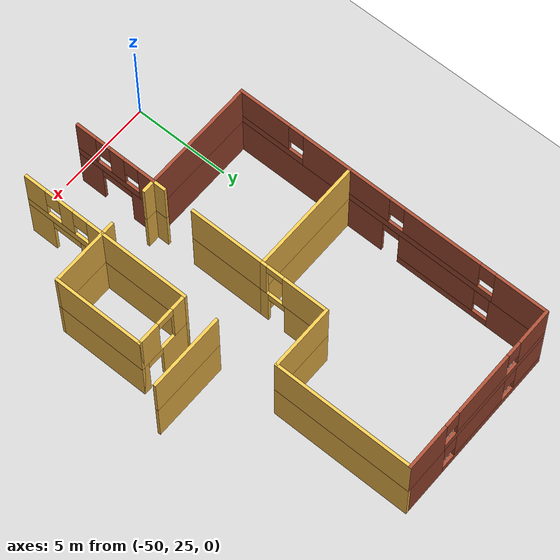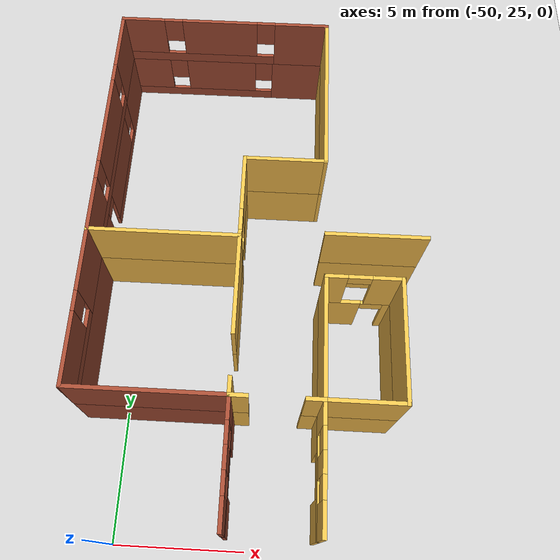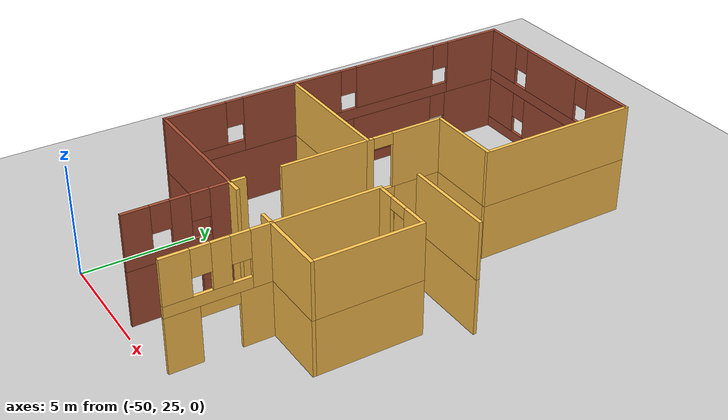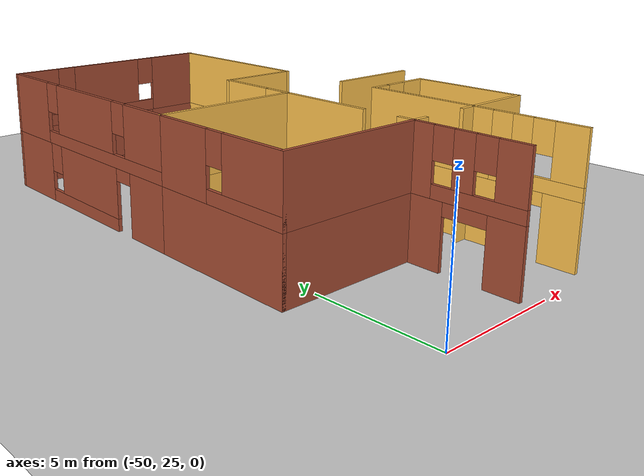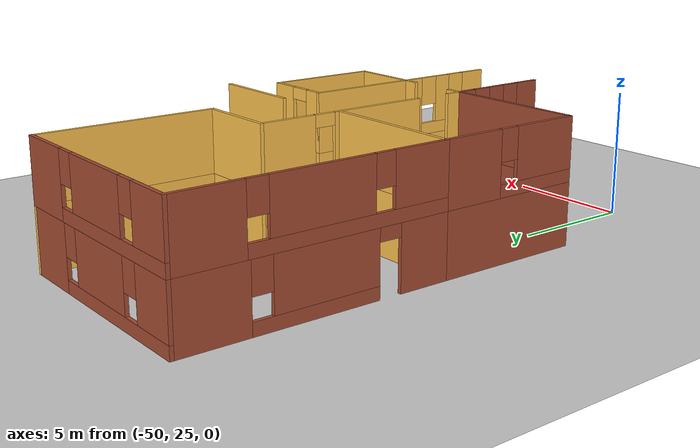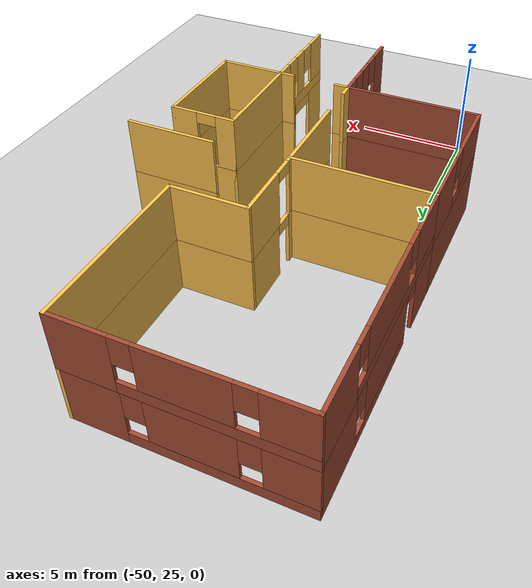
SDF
<sdf version="1.7">
 <world name="default">
  <model name="ground_plane">
   <static>1</static>
   <link name="link">
    <collision name="collision">
     <geometry><plane><normal>0 0 1</normal><size>100 100</size></plane></geometry>
     <surface>
      <contact><collide_bitmask>65535</collide_bitmask></contact>
      <friction><ode><mu>100</mu><mu2>50</mu2></ode></friction>
     </surface>
    </collision>
    <visual name="visual">
     <cast_shadows>0</cast_shadows>
     <geometry><plane><normal>0 0 1</normal><size>100 100</size></plane></geometry>
     <material>
      <script><uri>file://media/materials/scripts/gazebo.material</uri><name>Gazebo/Grey</name></script>
     </material>
    </visual>
   </link>
  </model>
  <model name="DepartmentBuilding">
   <pose>-25.6559 18.8293 0 0 -0 0</pose>
   <link name="Wall_271">
    <collision name="Wall_271_Collision">
     <geometry><box><size>7.25 0.15 2.5</size></box></geometry>
     <pose>0 0 1.25 0 -0 0</pose>
    </collision>
    <visual name="Wall_271_Visual">
     <pose>0 0 1.25 0 -0 0</pose>
     <geometry><box><size>7.25 0.15 2.5</size></box></geometry>
     <material>
      <script><uri>file://media/materials/scripts/gazebo.material</uri><name>Gazebo/Grey</name></script>
      <ambient>1 0.764706 0.305882 1</ambient>
     </material>
     <meta><layer>0</layer></meta>
    </visual>
    <pose>-16.8305 24.1392 0 0 -0 -1.57079</pose>
   </link>
   <link name="Wall_274">
    <pose>-21.3806 27.6891 0 0 -0 3.14159</pose>
    <visual name="Wall_274_Visual_0">
     <pose>-3.40443 0 1.25 0 -0 0</pose>
     <geometry><box><size>2.44114 0.15 2.5</size></box></geometry>
     <material>
      <script><uri>file://media/materials/scripts/gazebo.material</uri><name>Gazebo/Bricks</name></script>
      <ambient>1 1 1 1</ambient>
     </material>
     <meta><layer>0</layer></meta>
    </visual>
    <collision name="Wall_274_Collision_0">
     <geometry><box><size>2.44114 0.15 2.5</size></box></geometry>
     <pose>-3.40443 0 1.25 0 -0 0</pose>
    </collision>
    <visual name="Wall_274_Visual_1">
     <pose>1.22057 0 0.25 0 -0 0</pose>
     <geometry><box><size>6.80886 0.15 0.5</size></box></geometry>
     <material>
      <script><uri>file://media/materials/scripts/gazebo.material</uri><name>Gazebo/Bricks</name></script>
      <ambient>1 1 1 1</ambient>
     </material>
     <meta><layer>0</layer></meta>
    </visual>
    <collision name="Wall_274_Collision_1">
     <geometry><box><size>6.80886 0.15 0.5</size></box></geometry>
     <pose>1.22057 0 0.25 0 -0 0</pose>
    </collision>
    <visual name="Wall_274_Visual_2">
     <pose>0.2632 0 1.5 0 -0 0</pose>
     <geometry><box><size>3.29412 0.15 2</size></box></geometry>
     <material>
      <script><uri>file://media/materials/scripts/gazebo.material</uri><name>Gazebo/Bricks</name></script>
      <ambient>1 1 1 1</ambient>
     </material>
     <meta><layer>0</layer></meta>
    </visual>
    <collision name="Wall_274_Collision_2">
     <geometry><box><size>3.29412 0.15 2</size></box></geometry>
     <pose>0.2632 0 1.5 0 -0 0</pose>
    </collision>
    <visual name="Wall_274_Visual_3">
     <pose>3.66763 0 1.5 0 -0 0</pose>
     <geometry><box><size>1.91474 0.15 2</size></box></geometry>
     <material>
      <script><uri>file://media/materials/scripts/gazebo.material</uri><name>Gazebo/Bricks</name></script>
      <ambient>1 1 1 1</ambient>
     </material>
     <meta><layer>0</layer></meta>
    </visual>
    <collision name="Wall_274_Collision_3">
     <geometry><box><size>1.91474 0.15 2</size></box></geometry>
     <pose>3.66763 0 1.5 0 -0 0</pose>
    </collision>
    <visual name="Wall_274_Visual_4">
     <pose>-1.78386 0 1.9 0 -0 0</pose>
     <geometry><box><size>0.8 0.15 1.2</size></box></geometry>
     <material>
      <script><uri>file://media/materials/scripts/gazebo.material</uri><name>Gazebo/Bricks</name></script>
      <ambient>1 1 1 1</ambient>
     </material>
     <meta><layer>0</layer></meta>
    </visual>
    <collision name="Wall_274_Collision_4">
     <geometry><box><size>0.8 0.15 1.2</size></box></geometry>
     <pose>-1.78386 0 1.9 0 -0 0</pose>
    </collision>
    <visual name="Wall_274_Visual_5">
     <pose>2.31026 0 1.9 0 -0 0</pose>
     <geometry><box><size>0.8 0.15 1.2</size></box></geometry>
     <material>
      <script><uri>file://media/materials/scripts/gazebo.material</uri><name>Gazebo/Bricks</name></script>
      <ambient>1 1 1 1</ambient>
     </material>
     <meta><layer>0</layer></meta>
    </visual>
    <collision name="Wall_274_Collision_5">
     <geometry><box><size>0.8 0.15 1.2</size></box></geometry>
     <pose>2.31026 0 1.9 0 -0 0</pose>
    </collision>
   </link>
   <link name="Wall_275">
    <pose>-25.9306 22.3891 0 0 -0 -1.5708</pose>
    <visual name="Wall_275_Visual_0">
     <pose>-3.95491 0 1.25 0 -0 0</pose>
     <geometry><box><size>2.84017 0.15 2.5</size></box></geometry>
     <material>
      <script><uri>file://media/materials/scripts/gazebo.material</uri><name>Gazebo/Bricks</name></script>
      <ambient>1 1 1 1</ambient>
     </material>
     <meta><layer>0</layer></meta>
    </visual>
    <collision name="Wall_275_Collision_0">
     <geometry><box><size>2.84017 0.15 2.5</size></box></geometry>
     <pose>-3.95491 0 1.25 0 -0 0</pose>
    </collision>
    <visual name="Wall_275_Visual_1">
     <pose>4.34836 0 1.25 0 -0 0</pose>
     <geometry><box><size>2.05328 0.15 2.5</size></box></geometry>
     <material>
      <script><uri>file://media/materials/scripts/gazebo.material</uri><name>Gazebo/Bricks</name></script>
      <ambient>1 1 1 1</ambient>
     </material>
     <meta><layer>0</layer></meta>
    </visual>
    <collision name="Wall_275_Collision_1">
     <geometry><box><size>2.05328 0.15 2.5</size></box></geometry>
     <pose>4.34836 0 1.25 0 -0 0</pose>
    </collision>
    <visual name="Wall_275_Visual_2">
     <pose>-0.056553 0 0.25 0 -0 0</pose>
     <geometry><box><size>4.95655 0.15 0.5</size></box></geometry>
     <material>
      <script><uri>file://media/materials/scripts/gazebo.material</uri><name>Gazebo/Bricks</name></script>
      <ambient>1 1 1 1</ambient>
     </material>
     <meta><layer>0</layer></meta>
    </visual>
    <collision name="Wall_275_Collision_2">
     <geometry><box><size>4.95655 0.15 0.5</size></box></geometry>
     <pose>-0.056553 0 0.25 0 -0 0</pose>
    </collision>
    <visual name="Wall_275_Visual_3">
     <pose>0.343447 0 1.5 0 -0 0</pose>
     <geometry><box><size>4.15655 0.15 2</size></box></geometry>
     <material>
      <script><uri>file://media/materials/scripts/gazebo.material</uri><name>Gazebo/Bricks</name></script>
      <ambient>1 1 1 1</ambient>
     </material>
     <meta><layer>0</layer></meta>
    </visual>
    <collision name="Wall_275_Collision_3">
     <geometry><box><size>4.15655 0.15 2</size></box></geometry>
     <pose>0.343447 0 1.5 0 -0 0</pose>
    </collision>
    <visual name="Wall_275_Visual_4">
     <pose>-2.13483 0 1.9 0 -0 0</pose>
     <geometry><box><size>0.8 0.15 1.2</size></box></geometry>
     <material>
      <script><uri>file://media/materials/scripts/gazebo.material</uri><name>Gazebo/Bricks</name></script>
      <ambient>1 1 1 1</ambient>
     </material>
     <meta><layer>0</layer></meta>
    </visual>
    <collision name="Wall_275_Collision_4">
     <geometry><box><size>0.8 0.15 1.2</size></box></geometry>
     <pose>-2.13483 0 1.9 0 -0 0</pose>
    </collision>
    <visual name="Wall_275_Visual_5">
     <pose>2.87172 0 2.25 0 -0 0</pose>
     <geometry><box><size>0.9 0.15 0.5</size></box></geometry>
     <material>
      <script><uri>file://media/materials/scripts/gazebo.material</uri><name>Gazebo/Bricks</name></script>
      <ambient>1 1 1 1</ambient>
     </material>
     <meta><layer>0</layer></meta>
    </visual>
    <collision name="Wall_275_Collision_5">
     <geometry><box><size>0.9 0.15 0.5</size></box></geometry>
     <pose>2.87172 0 2.25 0 -0 0</pose>
    </collision>
   </link>
   <link name="Wall_276">
    <collision name="Wall_276_Collision">
     <geometry><box><size>6 0.15 2.5</size></box></geometry>
     <pose>0 0 1.25 0 -0 0</pose>
    </collision>
    <visual name="Wall_276_Visual">
     <pose>0 0 1.25 0 -0 0</pose>
     <geometry><box><size>6 0.15 2.5</size></box></geometry>
     <material>
      <script><uri>file://media/materials/scripts/gazebo.material</uri><name>Gazebo/Grey</name></script>
      <ambient>1 0.764706 0.305882 1</ambient>
     </material>
     <meta><layer>0</layer></meta>
    </visual>
    <pose>-23.0056 17.0891 0 0 -0 0</pose>
   </link>
   <link name="Wall_277">
    <pose>-20.0805 18.8392 0 0 -0 1.57077</pose>
    <visual name="Wall_277_Visual_0">
     <pose>-1.60655 0 1.25 0 -0 0</pose>
     <geometry><box><size>0.437216 0.15 2.5</size></box></geometry>
     <material>
      <script><uri>file://media/materials/scripts/gazebo.material</uri><name>Gazebo/Grey</name></script>
      <ambient>1 0.764706 0.305882 1</ambient>
     </material>
     <meta><layer>0</layer></meta>
    </visual>
    <collision name="Wall_277_Collision_0">
     <geometry><box><size>0.437216 0.15 2.5</size></box></geometry>
     <pose>-1.60655 0 1.25 0 -0 0</pose>
    </collision>
    <visual name="Wall_277_Visual_1">
     <pose>0.668608 0 1.25 0 -0 0</pose>
     <geometry><box><size>2.3131 0.15 2.5</size></box></geometry>
     <material>
      <script><uri>file://media/materials/scripts/gazebo.material</uri><name>Gazebo/Grey</name></script>
      <ambient>1 0.764706 0.305882 1</ambient>
     </material>
     <meta><layer>0</layer></meta>
    </visual>
    <collision name="Wall_277_Collision_1">
     <geometry><box><size>2.3131 0.15 2.5</size></box></geometry>
     <pose>0.668608 0 1.25 0 -0 0</pose>
    </collision>
    <visual name="Wall_277_Visual_2">
     <pose>-0.937941 0 2.25 0 -0 0</pose>
     <geometry><box><size>0.9 0.15 0.5</size></box></geometry>
     <material>
      <script><uri>file://media/materials/scripts/gazebo.material</uri><name>Gazebo/Grey</name></script>
      <ambient>1 0.764706 0.305882 1</ambient>
     </material>
     <meta><layer>0</layer></meta>
    </visual>
    <collision name="Wall_277_Collision_2">
     <geometry><box><size>0.9 0.15 0.5</size></box></geometry>
     <pose>-0.937941 0 2.25 0 -0 0</pose>
    </collision>
   </link>
   <link name="Wall_278">
    <collision name="Wall_278_Collision">
     <geometry><box><size>3.4 0.15 2.5</size></box></geometry>
     <pose>0 0 1.25 0 -0 0</pose>
    </collision>
    <visual name="Wall_278_Visual">
     <pose>0 0 1.25 0 -0 0</pose>
     <geometry><box><size>3.4 0.15 2.5</size></box></geometry>
     <material>
      <script><uri>file://media/materials/scripts/gazebo.material</uri><name>Gazebo/Grey</name></script>
      <ambient>1 0.764706 0.305882 1</ambient>
     </material>
     <meta><layer>0</layer></meta>
    </visual>
    <pose>-18.4555 20.5894 0 0 -0 0</pose>
   </link>
   <link name="Wall_280">
    <collision name="Wall_280_Collision">
     <geometry><box><size>4 0.15 2.5</size></box></geometry>
     <pose>0 0 1.25 0 -0 0</pose>
    </collision>
    <visual name="Wall_280_Visual">
     <pose>0 0 1.25 0 -0 0</pose>
     <geometry><box><size>4 0.15 2.5</size></box></geometry>
     <material>
      <script><uri>file://media/materials/scripts/gazebo.material</uri><name>Gazebo/Grey</name></script>
      <ambient>1 0.764706 0.305882 1</ambient>
     </material>
     <meta><layer>0</layer></meta>
    </visual>
    <pose>-20.0806 15.1641 0 0 -0 -1.5708</pose>
   </link>
   <link name="Wall_282">
    <collision name="Wall_282_Collision">
     <geometry><box><size>6.25 0.15 2.5</size></box></geometry>
     <pose>0 0 1.25 0 -0 0</pose>
    </collision>
    <visual name="Wall_282_Visual">
     <pose>0 0 1.25 0 -0 0</pose>
     <geometry><box><size>6.25 0.15 2.5</size></box></geometry>
     <material>
      <script><uri>file://media/materials/scripts/gazebo.material</uri><name>Gazebo/Bricks</name></script>
      <ambient>1 1 1 1</ambient>
     </material>
     <meta><layer>0</layer></meta>
    </visual>
    <pose>-25.9306 14.0391 0 0 -0 -1.5708</pose>
   </link>
   <link name="Wall_283">
    <collision name="Wall_283_Collision">
     <geometry><box><size>6 0.15 2.5</size></box></geometry>
     <pose>0 0 1.25 0 -0 0</pose>
    </collision>
    <visual name="Wall_283_Visual">
     <pose>0 0 1.25 0 -0 0</pose>
     <geometry><box><size>6 0.15 2.5</size></box></geometry>
     <material>
      <script><uri>file://media/materials/scripts/gazebo.material</uri><name>Gazebo/Bricks</name></script>
      <ambient>1 1 1 1</ambient>
     </material>
     <meta><layer>0</layer></meta>
    </visual>
    <pose>-23.0056 10.9891 0 0 -0 0</pose>
   </link>
   <link name="Wall_284">
    <collision name="Wall_284_Collision">
     <geometry><box><size>0.75 0.15 2.5</size></box></geometry>
     <pose>0 0 1.25 0 -0 0</pose>
    </collision>
    <visual name="Wall_284_Visual">
     <pose>0 0 1.25 0 -0 0</pose>
     <geometry><box><size>0.75 0.15 2.5</size></box></geometry>
     <material>
      <script><uri>file://media/materials/scripts/gazebo.material</uri><name>Gazebo/Grey</name></script>
      <ambient>1 0.764706 0.305882 1</ambient>
     </material>
     <meta><layer>0</layer></meta>
    </visual>
    <pose>-20.0806 11.2891 0 0 -0 1.5708</pose>
   </link>
   <link name="Wall_286">
    <collision name="Wall_286_Collision">
     <geometry><box><size>0.75 0.15 2.5</size></box></geometry>
     <pose>0 0 1.25 0 -0 0</pose>
    </collision>
    <visual name="Wall_286_Visual">
     <pose>0 0 1.25 0 -0 0</pose>
     <geometry><box><size>0.75 0.15 2.5</size></box></geometry>
     <material>
      <script><uri>file://media/materials/scripts/gazebo.material</uri><name>Gazebo/Grey</name></script>
      <ambient>1 0.764706 0.305882 1</ambient>
     </material>
     <meta><layer>0</layer></meta>
    </visual>
    <pose>-19.7806 10.9891 0 0 -0 0</pose>
   </link>
   <link name="Wall_288">
    <collision name="Wall_288_Collision">
     <geometry><box><size>0.75 0.15 2.5</size></box></geometry>
     <pose>0 0 1.25 0 -0 0</pose>
    </collision>
    <visual name="Wall_288_Visual">
     <pose>0 0 1.25 0 -0 0</pose>
     <geometry><box><size>0.75 0.15 2.5</size></box></geometry>
     <material>
      <script><uri>file://media/materials/scripts/gazebo.material</uri><name>Gazebo/Grey</name></script>
      <ambient>1 0.764706 0.305882 1</ambient>
     </material>
     <meta><layer>0</layer></meta>
    </visual>
    <pose>-17.0806 10.9891 0 0 -0 0</pose>
   </link>
   <link name="Wall_289">
    <collision name="Wall_289_Collision">
     <geometry><box><size>4.75 0.15 2.5</size></box></geometry>
     <pose>0 0 1.25 0 -0 0</pose>
    </collision>
    <visual name="Wall_289_Visual">
     <pose>0 0 1.25 0 -0 0</pose>
     <geometry><box><size>4.75 0.15 2.5</size></box></geometry>
     <material>
      <script><uri>file://media/materials/scripts/gazebo.material</uri><name>Gazebo/Grey</name></script>
      <ambient>1 0.764706 0.305882 1</ambient>
     </material>
     <meta><layer>0</layer></meta>
    </visual>
    <pose>-16.7806 13.2891 0 0 -0 1.5708</pose>
   </link>
   <link name="Wall_290">
    <pose>-15.3556 15.5891 0 0 -0 0</pose>
    <visual name="Wall_290_Visual_0">
     <pose>-0.661214 0 1.25 0 -0 0</pose>
     <geometry><box><size>1.67757 0.15 2.5</size></box></geometry>
     <material>
      <script><uri>file://media/materials/scripts/gazebo.material</uri><name>Gazebo/Grey</name></script>
      <ambient>1 0.764706 0.305882 1</ambient>
     </material>
     <meta><layer>0</layer></meta>
    </visual>
    <collision name="Wall_290_Collision_0">
     <geometry><box><size>1.67757 0.15 2.5</size></box></geometry>
     <pose>-0.661214 0 1.25 0 -0 0</pose>
    </collision>
    <visual name="Wall_290_Visual_1">
     <pose>1.28879 0 1.25 0 -0 0</pose>
     <geometry><box><size>0.422429 0.15 2.5</size></box></geometry>
     <material>
      <script><uri>file://media/materials/scripts/gazebo.material</uri><name>Gazebo/Grey</name></script>
      <ambient>1 0.764706 0.305882 1</ambient>
     </material>
     <meta><layer>0</layer></meta>
    </visual>
    <collision name="Wall_290_Collision_1">
     <geometry><box><size>0.422429 0.15 2.5</size></box></geometry>
     <pose>1.28879 0 1.25 0 -0 0</pose>
    </collision>
    <visual name="Wall_290_Visual_2">
     <pose>0.627571 0 2.25 0 -0 0</pose>
     <geometry><box><size>0.9 0.15 0.5</size></box></geometry>
     <material>
      <script><uri>file://media/materials/scripts/gazebo.material</uri><name>Gazebo/Grey</name></script>
      <ambient>1 0.764706 0.305882 1</ambient>
     </material>
     <meta><layer>0</layer></meta>
    </visual>
    <collision name="Wall_290_Collision_2">
     <geometry><box><size>0.9 0.15 0.5</size></box></geometry>
     <pose>0.627571 0 2.25 0 -0 0</pose>
    </collision>
   </link>
   <link name="Wall_291">
    <collision name="Wall_291_Collision">
     <geometry><box><size>4.75 0.15 2.5</size></box></geometry>
     <pose>0 0 1.25 0 -0 0</pose>
    </collision>
    <visual name="Wall_291_Visual">
     <pose>0 0 1.25 0 -0 0</pose>
     <geometry><box><size>4.75 0.15 2.5</size></box></geometry>
     <material>
      <script><uri>file://media/materials/scripts/gazebo.material</uri><name>Gazebo/Grey</name></script>
      <ambient>1 0.764706 0.305882 1</ambient>
     </material>
     <meta><layer>0</layer></meta>
    </visual>
    <pose>-13.9306 13.2891 0 0 -0 -1.5708</pose>
   </link>
   <link name="Wall_292">
    <collision name="Wall_292_Collision">
     <geometry><box><size>3 0.15 2.5</size></box></geometry>
     <pose>0 0 1.25 0 -0 0</pose>
    </collision>
    <visual name="Wall_292_Visual">
     <pose>0 0 1.25 0 -0 0</pose>
     <geometry><box><size>3 0.15 2.5</size></box></geometry>
     <material>
      <script><uri>file://media/materials/scripts/gazebo.material</uri><name>Gazebo/Grey</name></script>
      <ambient>1 0.764706 0.305882 1</ambient>
     </material>
     <meta><layer>0</layer></meta>
    </visual>
    <pose>-15.3556 10.9891 0 0 -0 3.14159</pose>
   </link>
   <link name="Wall_297">
    <collision name="Wall_297_Collision">
     <geometry><box><size>4 0.15 2.5</size></box></geometry>
     <pose>0 0 1.25 0 -0 0</pose>
    </collision>
    <visual name="Wall_297_Visual">
     <pose>0 0 1.25 0 -0 0</pose>
     <geometry><box><size>4 0.15 2.5</size></box></geometry>
     <material>
      <script><uri>file://media/materials/scripts/gazebo.material</uri><name>Gazebo/Grey</name></script>
      <ambient>1 0.764706 0.305882 1</ambient>
     </material>
     <meta><layer>0</layer></meta>
    </visual>
    <pose>-14.8556 17.3391 0 0 -0 3.14159</pose>
   </link>
   <link name="Wall_326">
    <pose>-20.0806 8.81406 0 0 -0 -1.5708</pose>
    <visual name="Wall_326_Visual_0">
     <pose>-1.53002 0 1.25 0 -0 0</pose>
     <geometry><box><size>1.43996 0.15 2.5</size></box></geometry>
     <material>
      <script><uri>file://media/materials/scripts/gazebo.material</uri><name>Gazebo/Bricks</name></script>
      <ambient>1 1 1 1</ambient>
     </material>
     <meta><layer>0</layer></meta>
    </visual>
    <collision name="Wall_326_Collision_0">
     <geometry><box><size>1.43996 0.15 2.5</size></box></geometry>
     <pose>-1.53002 0 1.25 0 -0 0</pose>
    </collision>
    <visual name="Wall_326_Visual_1">
     <pose>1.56998 0 1.25 0 -0 0</pose>
     <geometry><box><size>1.36004 0.15 2.5</size></box></geometry>
     <material>
      <script><uri>file://media/materials/scripts/gazebo.material</uri><name>Gazebo/Bricks</name></script>
      <ambient>1 1 1 1</ambient>
     </material>
     <meta><layer>0</layer></meta>
    </visual>
    <collision name="Wall_326_Collision_1">
     <geometry><box><size>1.36004 0.15 2.5</size></box></geometry>
     <pose>1.56998 0 1.25 0 -0 0</pose>
    </collision>
    <visual name="Wall_326_Visual_2">
     <pose>0.039956 0 2.25 0 -0 0</pose>
     <geometry><box><size>1.7 0.15 0.5</size></box></geometry>
     <material>
      <script><uri>file://media/materials/scripts/gazebo.material</uri><name>Gazebo/Bricks</name></script>
      <ambient>1 1 1 1</ambient>
     </material>
     <meta><layer>0</layer></meta>
    </visual>
    <collision name="Wall_326_Collision_2">
     <geometry><box><size>1.7 0.15 0.5</size></box></geometry>
     <pose>0.039956 0 2.25 0 -0 0</pose>
    </collision>
   </link>
   <link name="Wall_336">
    <pose>-16.7806 8.81406 0 0 -0 -1.5708</pose>
    <visual name="Wall_336_Visual_0">
     <pose>-1.51511 0 1.25 0 -0 0</pose>
     <geometry><box><size>1.46977 0.15 2.5</size></box></geometry>
     <material>
      <script><uri>file://media/materials/scripts/gazebo.material</uri><name>Gazebo/Grey</name></script>
      <ambient>1 0.764706 0.305882 1</ambient>
     </material>
     <meta><layer>0</layer></meta>
    </visual>
    <collision name="Wall_336_Collision_0">
     <geometry><box><size>1.46977 0.15 2.5</size></box></geometry>
     <pose>-1.51511 0 1.25 0 -0 0</pose>
    </collision>
    <visual name="Wall_336_Visual_1">
     <pose>1.53489 0 1.25 0 -0 0</pose>
     <geometry><box><size>1.43023 0.15 2.5</size></box></geometry>
     <material>
      <script><uri>file://media/materials/scripts/gazebo.material</uri><name>Gazebo/Grey</name></script>
      <ambient>1 0.764706 0.305882 1</ambient>
     </material>
     <meta><layer>0</layer></meta>
    </visual>
    <collision name="Wall_336_Collision_1">
     <geometry><box><size>1.43023 0.15 2.5</size></box></geometry>
     <pose>1.53489 0 1.25 0 -0 0</pose>
    </collision>
    <visual name="Wall_336_Visual_2">
     <pose>0.019773 0 2.25 0 -0 0</pose>
     <geometry><box><size>1.6 0.15 0.5</size></box></geometry>
     <material>
      <script><uri>file://media/materials/scripts/gazebo.material</uri><name>Gazebo/Grey</name></script>
      <ambient>1 0.764706 0.305882 1</ambient>
     </material>
     <meta><layer>0</layer></meta>
    </visual>
    <collision name="Wall_336_Collision_2">
     <geometry><box><size>1.6 0.15 0.5</size></box></geometry>
     <pose>0.019773 0 2.25 0 -0 0</pose>
    </collision>
   </link>
   <link name="Wall_937">
    <collision name="Wall_937_Collision">
     <geometry><box><size>7.24969 0.15 2.5</size></box></geometry>
     <pose>0 0 1.25 0 -0 0</pose>
    </collision>
    <visual name="Wall_937_Visual">
     <pose>0 0 1.25 0 -0 0</pose>
     <geometry><box><size>7.24969 0.15 2.5</size></box></geometry>
     <material>
      <script><uri>file://media/materials/scripts/gazebo.material</uri><name>Gazebo/Grey</name></script>
      <ambient>1 0.764706 0.305882 1</ambient>
     </material>
     <meta><layer>1</layer></meta>
    </visual>
    <pose>-16.8305 24.1392 2.5 0 -0 -1.57079</pose>
   </link>
   <link name="Wall_939">
    <pose>-21.3806 27.6891 2.5 0 -0 3.14159</pose>
    <visual name="Wall_939_Visual_0">
     <pose>-3.43227 0 1.25 0 -0 0</pose>
     <geometry><box><size>2.38547 0.15 2.5</size></box></geometry>
     <material>
      <script><uri>file://media/materials/scripts/gazebo.material</uri><name>Gazebo/Bricks</name></script>
      <ambient>1 1 1 1</ambient>
     </material>
     <meta><layer>1</layer></meta>
    </visual>
    <collision name="Wall_939_Collision_0">
     <geometry><box><size>2.38547 0.15 2.5</size></box></geometry>
     <pose>-3.43227 0 1.25 0 -0 0</pose>
    </collision>
    <visual name="Wall_939_Visual_1">
     <pose>1.19274 0 0.25 0 -0 0</pose>
     <geometry><box><size>6.86453 0.15 0.5</size></box></geometry>
     <material>
      <script><uri>file://media/materials/scripts/gazebo.material</uri><name>Gazebo/Bricks</name></script>
      <ambient>1 1 1 1</ambient>
     </material>
     <meta><layer>1</layer></meta>
    </visual>
    <collision name="Wall_939_Collision_1">
     <geometry><box><size>6.86453 0.15 0.5</size></box></geometry>
     <pose>1.19274 0 0.25 0 -0 0</pose>
    </collision>
    <visual name="Wall_939_Visual_2">
     <pose>0.232169 0 1.5 0 -0 0</pose>
     <geometry><box><size>3.3434 0.15 2</size></box></geometry>
     <material>
      <script><uri>file://media/materials/scripts/gazebo.material</uri><name>Gazebo/Bricks</name></script>
      <ambient>1 1 1 1</ambient>
     </material>
     <meta><layer>1</layer></meta>
    </visual>
    <collision name="Wall_939_Collision_2">
     <geometry><box><size>3.3434 0.15 2</size></box></geometry>
     <pose>0.232169 0 1.5 0 -0 0</pose>
    </collision>
    <visual name="Wall_939_Visual_3">
     <pose>3.66443 0 1.5 0 -0 0</pose>
     <geometry><box><size>1.92113 0.15 2</size></box></geometry>
     <material>
      <script><uri>file://media/materials/scripts/gazebo.material</uri><name>Gazebo/Bricks</name></script>
      <ambient>1 1 1 1</ambient>
     </material>
     <meta><layer>1</layer></meta>
    </visual>
    <collision name="Wall_939_Collision_3">
     <geometry><box><size>1.92113 0.15 2</size></box></geometry>
     <pose>3.66443 0 1.5 0 -0 0</pose>
    </collision>
    <visual name="Wall_939_Visual_4">
     <pose>-1.83953 0 1.9 0 -0 0</pose>
     <geometry><box><size>0.8 0.15 1.2</size></box></geometry>
     <material>
      <script><uri>file://media/materials/scripts/gazebo.material</uri><name>Gazebo/Bricks</name></script>
      <ambient>1 1 1 1</ambient>
     </material>
     <meta><layer>1</layer></meta>
    </visual>
    <collision name="Wall_939_Collision_4">
     <geometry><box><size>0.8 0.15 1.2</size></box></geometry>
     <pose>-1.83953 0 1.9 0 -0 0</pose>
    </collision>
    <visual name="Wall_939_Visual_5">
     <pose>2.30387 0 1.9 0 -0 0</pose>
     <geometry><box><size>0.8 0.15 1.2</size></box></geometry>
     <material>
      <script><uri>file://media/materials/scripts/gazebo.material</uri><name>Gazebo/Bricks</name></script>
      <ambient>1 1 1 1</ambient>
     </material>
     <meta><layer>1</layer></meta>
    </visual>
    <collision name="Wall_939_Collision_5">
     <geometry><box><size>0.8 0.15 1.2</size></box></geometry>
     <pose>2.30387 0 1.9 0 -0 0</pose>
    </collision>
   </link>
   <link name="Wall_940">
    <pose>-25.9306 22.3891 2.5 0 -0 -1.5708</pose>
    <visual name="Wall_940_Visual_0">
     <pose>-4.0037 0 1.25 0 -0 0</pose>
     <geometry><box><size>2.74261 0.15 2.5</size></box></geometry>
     <material>
      <script><uri>file://media/materials/scripts/gazebo.material</uri><name>Gazebo/Bricks</name></script>
      <ambient>1 1 1 1</ambient>
     </material>
     <meta><layer>1</layer></meta>
    </visual>
    <collision name="Wall_940_Collision_0">
     <geometry><box><size>2.74261 0.15 2.5</size></box></geometry>
     <pose>-4.0037 0 1.25 0 -0 0</pose>
    </collision>
    <visual name="Wall_940_Visual_1">
     <pose>1.3713 0 0.25 0 -0 0</pose>
     <geometry><box><size>8.0074 0.15 0.5</size></box></geometry>
     <material>
      <script><uri>file://media/materials/scripts/gazebo.material</uri><name>Gazebo/Bricks</name></script>
      <ambient>1 1 1 1</ambient>
     </material>
     <meta><layer>1</layer></meta>
    </visual>
    <collision name="Wall_940_Collision_1">
     <geometry><box><size>8.0074 0.15 0.5</size></box></geometry>
     <pose>1.3713 0 0.25 0 -0 0</pose>
    </collision>
    <visual name="Wall_940_Visual_2">
     <pose>0.211403 0 1.5 0 -0 0</pose>
     <geometry><box><size>4.0876 0.15 2</size></box></geometry>
     <material>
      <script><uri>file://media/materials/scripts/gazebo.material</uri><name>Gazebo/Bricks</name></script>
      <ambient>1 1 1 1</ambient>
     </material>
     <meta><layer>1</layer></meta>
    </visual>
    <collision name="Wall_940_Collision_2">
     <geometry><box><size>4.0876 0.15 2</size></box></geometry>
     <pose>0.211403 0 1.5 0 -0 0</pose>
    </collision>
    <visual name="Wall_940_Visual_3">
     <pose>4.2151 0 1.5 0 -0 0</pose>
     <geometry><box><size>2.3198 0.15 2</size></box></geometry>
     <material>
      <script><uri>file://media/materials/scripts/gazebo.material</uri><name>Gazebo/Bricks</name></script>
      <ambient>1 1 1 1</ambient>
     </material>
     <meta><layer>1</layer></meta>
    </visual>
    <collision name="Wall_940_Collision_3">
     <geometry><box><size>2.3198 0.15 2</size></box></geometry>
     <pose>4.2151 0 1.5 0 -0 0</pose>
    </collision>
    <visual name="Wall_940_Visual_4">
     <pose>-2.23239 0 1.9 0 -0 0</pose>
     <geometry><box><size>0.8 0.15 1.2</size></box></geometry>
     <material>
      <script><uri>file://media/materials/scripts/gazebo.material</uri><name>Gazebo/Bricks</name></script>
      <ambient>1 1 1 1</ambient>
     </material>
     <meta><layer>1</layer></meta>
    </visual>
    <collision name="Wall_940_Collision_4">
     <geometry><box><size>0.8 0.15 1.2</size></box></geometry>
     <pose>-2.23239 0 1.9 0 -0 0</pose>
    </collision>
    <visual name="Wall_940_Visual_5">
     <pose>2.6552 0 1.9 0 -0 0</pose>
     <geometry><box><size>0.8 0.15 1.2</size></box></geometry>
     <material>
      <script><uri>file://media/materials/scripts/gazebo.material</uri><name>Gazebo/Bricks</name></script>
      <ambient>1 1 1 1</ambient>
     </material>
     <meta><layer>1</layer></meta>
    </visual>
    <collision name="Wall_940_Collision_5">
     <geometry><box><size>0.8 0.15 1.2</size></box></geometry>
     <pose>2.6552 0 1.9 0 -0 0</pose>
    </collision>
   </link>
   <link name="Wall_941">
    <collision name="Wall_941_Collision">
     <geometry><box><size>6 0.15 2.5</size></box></geometry>
     <pose>0 0 1.25 0 -0 0</pose>
    </collision>
    <visual name="Wall_941_Visual">
     <pose>0 0 1.25 0 -0 0</pose>
     <geometry><box><size>6 0.15 2.5</size></box></geometry>
     <material>
      <script><uri>file://media/materials/scripts/gazebo.material</uri><name>Gazebo/Grey</name></script>
      <ambient>1 0.764706 0.305882 1</ambient>
     </material>
     <meta><layer>1</layer></meta>
    </visual>
    <pose>-23.0056 17.0891 2.5 0 -0 0</pose>
   </link>
   <link name="Wall_942">
    <pose>-20.0805 18.8392 2.5 0 -0 1.57077</pose>
    <visual name="Wall_942_Visual_0">
     <pose>-1.66045 0 1.25 0 -0 0</pose>
     <geometry><box><size>0.329407 0.15 2.5</size></box></geometry>
     <material>
      <script><uri>file://media/materials/scripts/gazebo.material</uri><name>Gazebo/Grey</name></script>
      <ambient>1 0.764706 0.305882 1</ambient>
     </material>
     <meta><layer>1</layer></meta>
    </visual>
    <collision name="Wall_942_Collision_0">
     <geometry><box><size>0.329407 0.15 2.5</size></box></geometry>
     <pose>-1.66045 0 1.25 0 -0 0</pose>
    </collision>
    <visual name="Wall_942_Visual_1">
     <pose>0.614704 0 1.25 0 -0 0</pose>
     <geometry><box><size>2.42091 0.15 2.5</size></box></geometry>
     <material>
      <script><uri>file://media/materials/scripts/gazebo.material</uri><name>Gazebo/Grey</name></script>
      <ambient>1 0.764706 0.305882 1</ambient>
     </material>
     <meta><layer>1</layer></meta>
    </visual>
    <collision name="Wall_942_Collision_1">
     <geometry><box><size>2.42091 0.15 2.5</size></box></geometry>
     <pose>0.614704 0 1.25 0 -0 0</pose>
    </collision>
    <visual name="Wall_942_Visual_2">
     <pose>-1.04575 0 2.25 0 -0 0</pose>
     <geometry><box><size>0.9 0.15 0.5</size></box></geometry>
     <material>
      <script><uri>file://media/materials/scripts/gazebo.material</uri><name>Gazebo/Grey</name></script>
      <ambient>1 0.764706 0.305882 1</ambient>
     </material>
     <meta><layer>1</layer></meta>
    </visual>
    <collision name="Wall_942_Collision_2">
     <geometry><box><size>0.9 0.15 0.5</size></box></geometry>
     <pose>-1.04575 0 2.25 0 -0 0</pose>
    </collision>
   </link>
   <link name="Wall_943">
    <collision name="Wall_943_Collision">
     <geometry><box><size>3.4 0.15 2.5</size></box></geometry>
     <pose>0 0 1.25 0 -0 0</pose>
    </collision>
    <visual name="Wall_943_Visual">
     <pose>0 0 1.25 0 -0 0</pose>
     <geometry><box><size>3.4 0.15 2.5</size></box></geometry>
     <material>
      <script><uri>file://media/materials/scripts/gazebo.material</uri><name>Gazebo/Grey</name></script>
      <ambient>1 0.764706 0.305882 1</ambient>
     </material>
     <meta><layer>1</layer></meta>
    </visual>
    <pose>-18.4555 20.5894 2.5 0 -0 0</pose>
   </link>
   <link name="Wall_944">
    <collision name="Wall_944_Collision">
     <geometry><box><size>4 0.15 2.5</size></box></geometry>
     <pose>0 0 1.25 0 -0 0</pose>
    </collision>
    <visual name="Wall_944_Visual">
     <pose>0 0 1.25 0 -0 0</pose>
     <geometry><box><size>4 0.15 2.5</size></box></geometry>
     <material>
      <script><uri>file://media/materials/scripts/gazebo.material</uri><name>Gazebo/Grey</name></script>
      <ambient>1 0.764706 0.305882 1</ambient>
     </material>
     <meta><layer>1</layer></meta>
    </visual>
    <pose>-20.0806 15.1641 2.5 0 -0 -1.5708</pose>
   </link>
   <link name="Wall_945">
    <pose>-25.9306 14.0391 2.5 0 -0 -1.5708</pose>
    <visual name="Wall_945_Visual_0">
     <pose>-1.80766 0 1.25 0 -0 0</pose>
     <geometry><box><size>2.63468 0.15 2.5</size></box></geometry>
     <material>
      <script><uri>file://media/materials/scripts/gazebo.material</uri><name>Gazebo/Bricks</name></script>
      <ambient>1 1 1 1</ambient>
     </material>
     <meta><layer>1</layer></meta>
    </visual>
    <collision name="Wall_945_Collision_0">
     <geometry><box><size>2.63468 0.15 2.5</size></box></geometry>
     <pose>-1.80766 0 1.25 0 -0 0</pose>
    </collision>
    <visual name="Wall_945_Visual_1">
     <pose>1.31734 0 0.25 0 -0 0</pose>
     <geometry><box><size>3.61532 0.15 0.5</size></box></geometry>
     <material>
      <script><uri>file://media/materials/scripts/gazebo.material</uri><name>Gazebo/Bricks</name></script>
      <ambient>1 1 1 1</ambient>
     </material>
     <meta><layer>1</layer></meta>
    </visual>
    <collision name="Wall_945_Collision_1">
     <geometry><box><size>3.61532 0.15 0.5</size></box></geometry>
     <pose>1.31734 0 0.25 0 -0 0</pose>
    </collision>
    <visual name="Wall_945_Visual_2">
     <pose>1.71734 0 1.5 0 -0 0</pose>
     <geometry><box><size>2.81532 0.15 2</size></box></geometry>
     <material>
      <script><uri>file://media/materials/scripts/gazebo.material</uri><name>Gazebo/Bricks</name></script>
      <ambient>1 1 1 1</ambient>
     </material>
     <meta><layer>1</layer></meta>
    </visual>
    <collision name="Wall_945_Collision_2">
     <geometry><box><size>2.81532 0.15 2</size></box></geometry>
     <pose>1.71734 0 1.5 0 -0 0</pose>
    </collision>
    <visual name="Wall_945_Visual_3">
     <pose>-0.090324 0 1.9 0 -0 0</pose>
     <geometry><box><size>0.8 0.15 1.2</size></box></geometry>
     <material>
      <script><uri>file://media/materials/scripts/gazebo.material</uri><name>Gazebo/Bricks</name></script>
      <ambient>1 1 1 1</ambient>
     </material>
     <meta><layer>1</layer></meta>
    </visual>
    <collision name="Wall_945_Collision_3">
     <geometry><box><size>0.8 0.15 1.2</size></box></geometry>
     <pose>-0.090324 0 1.9 0 -0 0</pose>
    </collision>
   </link>
   <link name="Wall_946">
    <collision name="Wall_946_Collision">
     <geometry><box><size>6 0.15 2.5</size></box></geometry>
     <pose>0 0 1.25 0 -0 0</pose>
    </collision>
    <visual name="Wall_946_Visual">
     <pose>0 0 1.25 0 -0 0</pose>
     <geometry><box><size>6 0.15 2.5</size></box></geometry>
     <material>
      <script><uri>file://media/materials/scripts/gazebo.material</uri><name>Gazebo/Bricks</name></script>
      <ambient>1 1 1 1</ambient>
     </material>
     <meta><layer>1</layer></meta>
    </visual>
    <pose>-23.0056 10.9891 2.5 0 -0 0</pose>
   </link>
   <link name="Wall_947">
    <collision name="Wall_947_Collision">
     <geometry><box><size>0.75 0.15 2.5</size></box></geometry>
     <pose>0 0 1.25 0 -0 0</pose>
    </collision>
    <visual name="Wall_947_Visual">
     <pose>0 0 1.25 0 -0 0</pose>
     <geometry><box><size>0.75 0.15 2.5</size></box></geometry>
     <material>
      <script><uri>file://media/materials/scripts/gazebo.material</uri><name>Gazebo/Grey</name></script>
      <ambient>1 0.764706 0.305882 1</ambient>
     </material>
     <meta><layer>1</layer></meta>
    </visual>
    <pose>-20.0806 11.2891 2.5 0 -0 1.5708</pose>
   </link>
   <link name="Wall_948">
    <collision name="Wall_948_Collision">
     <geometry><box><size>0.75 0.15 2.5</size></box></geometry>
     <pose>0 0 1.25 0 -0 0</pose>
    </collision>
    <visual name="Wall_948_Visual">
     <pose>0 0 1.25 0 -0 0</pose>
     <geometry><box><size>0.75 0.15 2.5</size></box></geometry>
     <material>
      <script><uri>file://media/materials/scripts/gazebo.material</uri><name>Gazebo/Grey</name></script>
      <ambient>1 0.764706 0.305882 1</ambient>
     </material>
     <meta><layer>1</layer></meta>
    </visual>
    <pose>-19.7806 10.9891 2.5 0 -0 0</pose>
   </link>
   <link name="Wall_949">
    <collision name="Wall_949_Collision">
     <geometry><box><size>0.75 0.15 2.5</size></box></geometry>
     <pose>0 0 1.25 0 -0 0</pose>
    </collision>
    <visual name="Wall_949_Visual">
     <pose>0 0 1.25 0 -0 0</pose>
     <geometry><box><size>0.75 0.15 2.5</size></box></geometry>
     <material>
      <script><uri>file://media/materials/scripts/gazebo.material</uri><name>Gazebo/Grey</name></script>
      <ambient>1 0.764706 0.305882 1</ambient>
     </material>
     <meta><layer>1</layer></meta>
    </visual>
    <pose>-17.0806 10.9891 2.5 0 -0 0</pose>
   </link>
   <link name="Wall_950">
    <collision name="Wall_950_Collision">
     <geometry><box><size>4.75 0.15 2.5</size></box></geometry>
     <pose>0 0 1.25 0 -0 0</pose>
    </collision>
    <visual name="Wall_950_Visual">
     <pose>0 0 1.25 0 -0 0</pose>
     <geometry><box><size>4.75 0.15 2.5</size></box></geometry>
     <material>
      <script><uri>file://media/materials/scripts/gazebo.material</uri><name>Gazebo/Grey</name></script>
      <ambient>1 0.764706 0.305882 1</ambient>
     </material>
     <meta><layer>1</layer></meta>
    </visual>
    <pose>-16.7806 13.2891 2.5 0 -0 1.5708</pose>
   </link>
   <link name="Wall_951">
    <pose>-15.3556 15.5891 2.5 0 -0 0</pose>
    <visual name="Wall_951_Visual_0">
     <pose>-1.05696 0 1.25 0 -0 0</pose>
     <geometry><box><size>0.886077 0.15 2.5</size></box></geometry>
     <material>
      <script><uri>file://media/materials/scripts/gazebo.material</uri><name>Gazebo/Grey</name></script>
      <ambient>1 0.764706 0.305882 1</ambient>
     </material>
     <meta><layer>1</layer></meta>
    </visual>
    <collision name="Wall_951_Collision_0">
     <geometry><box><size>0.886077 0.15 2.5</size></box></geometry>
     <pose>-1.05696 0 1.25 0 -0 0</pose>
    </collision>
    <visual name="Wall_951_Visual_1">
     <pose>0.893038 0 1.25 0 -0 0</pose>
     <geometry><box><size>1.21392 0.15 2.5</size></box></geometry>
     <material>
      <script><uri>file://media/materials/scripts/gazebo.material</uri><name>Gazebo/Grey</name></script>
      <ambient>1 0.764706 0.305882 1</ambient>
     </material>
     <meta><layer>1</layer></meta>
    </visual>
    <collision name="Wall_951_Collision_1">
     <geometry><box><size>1.21392 0.15 2.5</size></box></geometry>
     <pose>0.893038 0 1.25 0 -0 0</pose>
    </collision>
    <visual name="Wall_951_Visual_2">
     <pose>-0.163923 0 2.25 0 -0 0</pose>
     <geometry><box><size>0.9 0.15 0.5</size></box></geometry>
     <material>
      <script><uri>file://media/materials/scripts/gazebo.material</uri><name>Gazebo/Grey</name></script>
      <ambient>1 0.764706 0.305882 1</ambient>
     </material>
     <meta><layer>1</layer></meta>
    </visual>
    <collision name="Wall_951_Collision_2">
     <geometry><box><size>0.9 0.15 0.5</size></box></geometry>
     <pose>-0.163923 0 2.25 0 -0 0</pose>
    </collision>
   </link>
   <link name="Wall_952">
    <collision name="Wall_952_Collision">
     <geometry><box><size>4.75 0.15 2.5</size></box></geometry>
     <pose>0 0 1.25 0 -0 0</pose>
    </collision>
    <visual name="Wall_952_Visual">
     <pose>0 0 1.25 0 -0 0</pose>
     <geometry><box><size>4.75 0.15 2.5</size></box></geometry>
     <material>
      <script><uri>file://media/materials/scripts/gazebo.material</uri><name>Gazebo/Grey</name></script>
      <ambient>1 0.764706 0.305882 1</ambient>
     </material>
     <meta><layer>1</layer></meta>
    </visual>
    <pose>-13.9306 13.2891 2.5 0 -0 -1.5708</pose>
   </link>
   <link name="Wall_953">
    <collision name="Wall_953_Collision">
     <geometry><box><size>3 0.15 2.5</size></box></geometry>
     <pose>0 0 1.25 0 -0 0</pose>
    </collision>
    <visual name="Wall_953_Visual">
     <pose>0 0 1.25 0 -0 0</pose>
     <geometry><box><size>3 0.15 2.5</size></box></geometry>
     <material>
      <script><uri>file://media/materials/scripts/gazebo.material</uri><name>Gazebo/Grey</name></script>
      <ambient>1 0.764706 0.305882 1</ambient>
     </material>
     <meta><layer>1</layer></meta>
    </visual>
    <pose>-15.3556 10.9891 2.5 0 -0 3.14159</pose>
   </link>
   <link name="Wall_957">
    <collision name="Wall_957_Collision">
     <geometry><box><size>4 0.15 2.5</size></box></geometry>
     <pose>0 0 1.25 0 -0 0</pose>
    </collision>
    <visual name="Wall_957_Visual">
     <pose>0 0 1.25 0 -0 0</pose>
     <geometry><box><size>4 0.15 2.5</size></box></geometry>
     <material>
      <script><uri>file://media/materials/scripts/gazebo.material</uri><name>Gazebo/Grey</name></script>
      <ambient>1 0.764706 0.305882 1</ambient>
     </material>
     <meta><layer>1</layer></meta>
    </visual>
    <pose>-14.8556 17.3391 2.5 0 -0 3.14159</pose>
   </link>
   <link name="Wall_972">
    <pose>-20.0806 8.81406 2.5 0 -0 -1.5708</pose>
    <visual name="Wall_972_Visual_0">
     <pose>-1.78083 0 1.25 0 -0 0</pose>
     <geometry><box><size>0.93835 0.15 2.5</size></box></geometry>
     <material>
      <script><uri>file://media/materials/scripts/gazebo.material</uri><name>Gazebo/Bricks</name></script>
      <ambient>1 1 1 1</ambient>
     </material>
     <meta><layer>1</layer></meta>
    </visual>
    <collision name="Wall_972_Collision_0">
     <geometry><box><size>0.93835 0.15 2.5</size></box></geometry>
     <pose>-1.78083 0 1.25 0 -0 0</pose>
    </collision>
    <visual name="Wall_972_Visual_1">
     <pose>0.469175 0 0.25 0 -0 0</pose>
     <geometry><box><size>3.56165 0.15 0.5</size></box></geometry>
     <material>
      <script><uri>file://media/materials/scripts/gazebo.material</uri><name>Gazebo/Bricks</name></script>
      <ambient>1 1 1 1</ambient>
     </material>
     <meta><layer>1</layer></meta>
    </visual>
    <collision name="Wall_972_Collision_1">
     <geometry><box><size>3.56165 0.15 0.5</size></box></geometry>
     <pose>0.469175 0 0.25 0 -0 0</pose>
    </collision>
    <visual name="Wall_972_Visual_2">
     <pose>-0.107107 0 1.5 0 -0 0</pose>
     <geometry><box><size>0.809085 0.15 2</size></box></geometry>
     <material>
      <script><uri>file://media/materials/scripts/gazebo.material</uri><name>Gazebo/Bricks</name></script>
      <ambient>1 1 1 1</ambient>
     </material>
     <meta><layer>1</layer></meta>
    </visual>
    <collision name="Wall_972_Collision_2">
     <geometry><box><size>0.809085 0.15 2</size></box></geometry>
     <pose>-0.107107 0 1.5 0 -0 0</pose>
    </collision>
    <visual name="Wall_972_Visual_3">
     <pose>1.67372 0 1.5 0 -0 0</pose>
     <geometry><box><size>1.15257 0.15 2</size></box></geometry>
     <material>
      <script><uri>file://media/materials/scripts/gazebo.material</uri><name>Gazebo/Bricks</name></script>
      <ambient>1 1 1 1</ambient>
     </material>
     <meta><layer>1</layer></meta>
    </visual>
    <collision name="Wall_972_Collision_3">
     <geometry><box><size>1.15257 0.15 2</size></box></geometry>
     <pose>1.67372 0 1.5 0 -0 0</pose>
    </collision>
    <visual name="Wall_972_Visual_4">
     <pose>-0.91165 0 1.9 0 -0 0</pose>
     <geometry><box><size>0.8 0.15 1.2</size></box></geometry>
     <material>
      <script><uri>file://media/materials/scripts/gazebo.material</uri><name>Gazebo/Bricks</name></script>
      <ambient>1 1 1 1</ambient>
     </material>
     <meta><layer>1</layer></meta>
    </visual>
    <collision name="Wall_972_Collision_4">
     <geometry><box><size>0.8 0.15 1.2</size></box></geometry>
     <pose>-0.91165 0 1.9 0 -0 0</pose>
    </collision>
    <visual name="Wall_972_Visual_5">
     <pose>0.697435 0 1.9 0 -0 0</pose>
     <geometry><box><size>0.8 0.15 1.2</size></box></geometry>
     <material>
      <script><uri>file://media/materials/scripts/gazebo.material</uri><name>Gazebo/Bricks</name></script>
      <ambient>1 1 1 1</ambient>
     </material>
     <meta><layer>1</layer></meta>
    </visual>
    <collision name="Wall_972_Collision_5">
     <geometry><box><size>0.8 0.15 1.2</size></box></geometry>
     <pose>0.697435 0 1.9 0 -0 0</pose>
    </collision>
   </link>
   <link name="Wall_977">
    <pose>-16.7806 8.81406 2.5 0 -0 -1.5708</pose>
    <visual name="Wall_977_Visual_0">
     <pose>-1.78083 0 1.25 0 -0 0</pose>
     <geometry><box><size>0.93835 0.15 2.5</size></box></geometry>
     <material>
      <script><uri>file://media/materials/scripts/gazebo.material</uri><name>Gazebo/Grey</name></script>
      <ambient>1 0.764706 0.305882 1</ambient>
     </material>
     <meta><layer>1</layer></meta>
    </visual>
    <collision name="Wall_977_Collision_0">
     <geometry><box><size>0.93835 0.15 2.5</size></box></geometry>
     <pose>-1.78083 0 1.25 0 -0 0</pose>
    </collision>
    <visual name="Wall_977_Visual_1">
     <pose>0.469175 0 0.25 0 -0 0</pose>
     <geometry><box><size>3.56165 0.15 0.5</size></box></geometry>
     <material>
      <script><uri>file://media/materials/scripts/gazebo.material</uri><name>Gazebo/Grey</name></script>
      <ambient>1 0.764706 0.305882 1</ambient>
     </material>
     <meta><layer>1</layer></meta>
    </visual>
    <collision name="Wall_977_Collision_1">
     <geometry><box><size>3.56165 0.15 0.5</size></box></geometry>
     <pose>0.469175 0 0.25 0 -0 0</pose>
    </collision>
    <visual name="Wall_977_Visual_2">
     <pose>-0.127221 0 1.5 0 -0 0</pose>
     <geometry><box><size>0.768858 0.15 2</size></box></geometry>
     <material>
      <script><uri>file://media/materials/scripts/gazebo.material</uri><name>Gazebo/Grey</name></script>
      <ambient>1 0.764706 0.305882 1</ambient>
     </material>
     <meta><layer>1</layer></meta>
    </visual>
    <collision name="Wall_977_Collision_2">
     <geometry><box><size>0.768858 0.15 2</size></box></geometry>
     <pose>-0.127221 0 1.5 0 -0 0</pose>
    </collision>
    <visual name="Wall_977_Visual_3">
     <pose>1.6536 0 1.5 0 -0 0</pose>
     <geometry><box><size>1.19279 0.15 2</size></box></geometry>
     <material>
      <script><uri>file://media/materials/scripts/gazebo.material</uri><name>Gazebo/Grey</name></script>
      <ambient>1 0.764706 0.305882 1</ambient>
     </material>
     <meta><layer>1</layer></meta>
    </visual>
    <collision name="Wall_977_Collision_3">
     <geometry><box><size>1.19279 0.15 2</size></box></geometry>
     <pose>1.6536 0 1.5 0 -0 0</pose>
    </collision>
    <visual name="Wall_977_Visual_4">
     <pose>-0.91165 0 1.9 0 -0 0</pose>
     <geometry><box><size>0.8 0.15 1.2</size></box></geometry>
     <material>
      <script><uri>file://media/materials/scripts/gazebo.material</uri><name>Gazebo/Grey</name></script>
      <ambient>1 0.764706 0.305882 1</ambient>
     </material>
     <meta><layer>1</layer></meta>
    </visual>
    <collision name="Wall_977_Collision_4">
     <geometry><box><size>0.8 0.15 1.2</size></box></geometry>
     <pose>-0.91165 0 1.9 0 -0 0</pose>
    </collision>
    <visual name="Wall_977_Visual_5">
     <pose>0.657208 0 1.9 0 -0 0</pose>
     <geometry><box><size>0.8 0.15 1.2</size></box></geometry>
     <material>
      <script><uri>file://media/materials/scripts/gazebo.material</uri><name>Gazebo/Grey</name></script>
      <ambient>1 0.764706 0.305882 1</ambient>
     </material>
     <meta><layer>1</layer></meta>
    </visual>
    <collision name="Wall_977_Collision_5">
     <geometry><box><size>0.8 0.15 1.2</size></box></geometry>
     <pose>0.657208 0 1.9 0 -0 0</pose>
    </collision>
   </link>
   <static>1</static>
  </model>
 </world>
</sdf>
